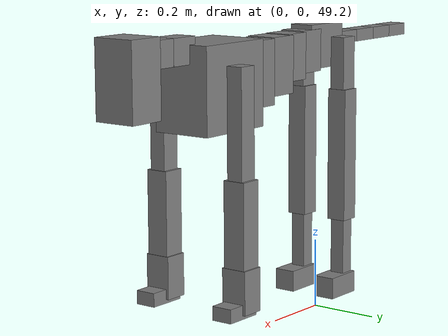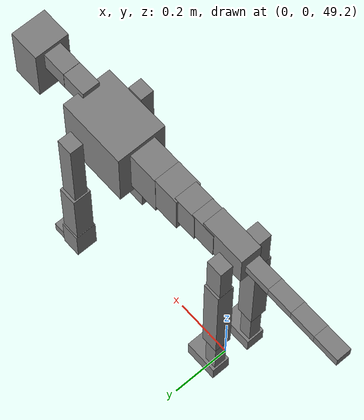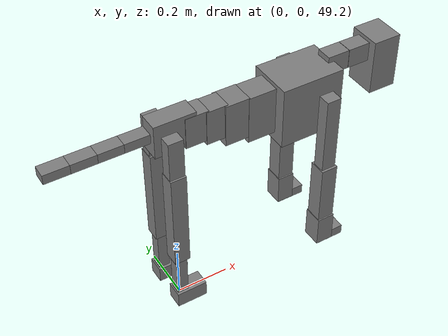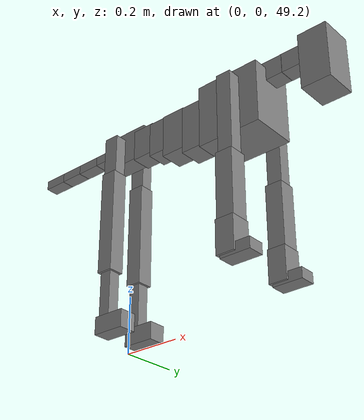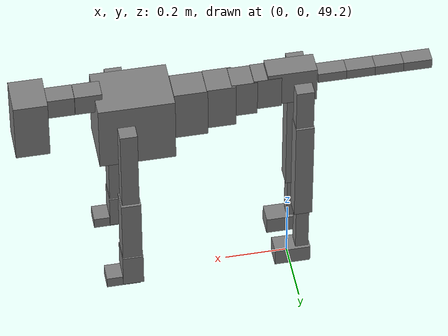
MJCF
<mujoco model="dog">

    <default>
        <joint armature="0.02" stiffness="1" damping="0.2" limited="true"/>
        <geom condim="3" friction="1 0.05 0.05" margin="0.01"/>
        <motor ctrllimited="true" ctrlrange="-1.0 1.0" forcelimited="true" gear="50"/>
    </default>

    <compiler inertiafromgeom="true" angle="radian"/>

    <option timestep="0.016" iterations="50" tolerance="1e-10" solver="Newton" jacobian="dense" cone="pyramidal"/>

    <size nconmax="20000" njmax="60000" nstack="5000000"/>
    <visual>
        <map force="0.1" zfar="30"/>
        <rgba haze="0.15 0.25 0.35 1"/>
        <quality shadowsize="2048"/>
        <global offwidth="800" offheight="800"/>
    </visual>

    <asset>
        <texture type="skybox" builtin="gradient" rgb1="0.3 0.5 0.7" rgb2="0 0 0" width="512" height="512"/>
        <texture name="texplane" type="2d" builtin="checker" rgb1=".2 .3 .4" rgb2=".1 0.15 0.2" width="512" height="512"
                 mark="cross" markrgb=".8 .8 .8"/>
        <texture name="texgeom" type="cube" builtin="flat" mark="cross" width="127" height="1278" rgb1="0.8 0.6 0.4"
                 rgb2="0.8 0.6 0.4" markrgb="1 1 1" random="0.01"/>

        <material name="matplane" reflectance="0.3" texture="texplane" texrepeat="1 1" texuniform="true"/>
        <material name="matgeom" texture="texgeom" texuniform="true" rgba="0.8 0.6 .4 1"/>
    </asset>

    <worldbody>
        <geom name="floor" pos="0 0 0" size="0 0 .25" type="plane" material="matplane" condim="3"/>

        <light directional="false" diffuse=".2 .2 .2" specular="0 0 0" pos="0 0 5" dir="0 0 -1" castshadow="false"/>
        <light mode="targetbodycom" target="torso" directional="false" diffuse=".8 .8 .8" specular="0.3 0.3 0.3"
               pos="0 0 4.0" dir="0 0 -1"/>

        <body name="root" pos="0 0 50">
            <freejoint name="root_1"/>
            <geom type="box" pos="0 0 -0.02" size="0.0774  0.0358  0.063" density="2030"/>

            <body name="spine1" pos="0.054 0 0">
                <joint name="spine1_y" axis="0 1 0" range="0 0.7" limited="true"/>
                <geom type="box" pos="0.02375 0 -0.03" size="0.04375  0.0375  0.05985" density="2030"/>

                <body name="spine2" pos="0.0612 0 0">
                    <joint name="spine2_y" axis="0 1 0" range="-0.15 0.15" limited="true"/>
                    <geom type="box" pos="0.03555  0  -0.04" size="0.04055  0.039  0.06615" density="2030"/>

                    <body name="spine3" pos="0.0730 0 0">
                        <joint name="spine3_y" axis="0 1 0" range="-0.15 0.15" limited="true"/>
                        <geom type="box" pos="0.03555  0  -0.057" size="0.04555  0.0445  0.081" density="2030"/>

                        <body name="spine4" pos="0.0780 0 0">
                            <joint name="spine4_y" axis="0 1 0" range="-0.15 0.15" limited="true"/>
                            <geom type="box" pos="0.05265  0  -0.07" size="0.05265  0.045  0.09135" density="2030"/>

                            <body name="torso" pos="0.1082 0 0">
                                <joint name="torso_y" axis="0 1 0" range="-0.15 0.15" limited="true"/>
                                <geom type="box" pos="0.11925  0  -0.085" size="0.11925  0.085  0.11745"
                                      density="2030"/>

                                <body name="neck1" pos="0.2160  0   0.0180">
                                    <joint name="neck1_y" axis="0 1 0" range="-1.2  -1" limited="true"/>
                                    <geom type="box" pos="0.0423  0  0" size="0.0423  0.03  0.036" density="2325"/>

                                    <body name="neck2" pos="0.0853  0  0">
                                        <joint name="neck2_y" axis="0 1 0" range="0.1  0" limited="true"/>
                                        <geom type="box" pos="0.0423  0  0" size="0.0423  0.03  0.036" density="2325"/>

                                        <body name="head" pos="0.0853  0  0">
                                            <joint name="head_y" axis="0 1 0" range="-0.3  -0.2" limited="true"/>
                                            <geom type="box" pos="0.0531  0  -0.055" size="0.0531  0.06  0.1044"
                                                  density="4030"/>

                                        </body>
                                    </body>
                                </body>

                                <body name="front_shoulder" pos="0.156  0   -0.0480">
                                    <joint name="front_shoulder_y" axis="0 1 0" range="-1 1.5" limited="true"/>
                                    <geom type="box" pos="0 0.13 -0.1352" size="0.0272  0.0232  0.1619" density="1158"/>
                                    <geom type="box" pos="0 -0.13 -0.1352" size="0.0272  0.0232  0.1619"
                                          density="1158"/>

                                    <body name="front_elbow" pos="0  0  -0.2705">
                                        <joint name="front_elbow_y" axis="0 1 0" range="-2 0" limited="true"/>
                                        <geom type="box" pos="0 0.13 -0.1231" size="0.0314  0.0321  0.1231"
                                              density="1081"/>
                                        <geom type="box" pos="0 -0.13 -0.1231" size="0.0314  0.0321  0.1231"
                                              density="1081"/>

                                        <body name="front_wrist" pos="0  0  -0.2463">
                                            <joint name="front_wrist_y" axis="0 1 0" range="-0.2 0" limited="true"/>
                                            <geom type="box" pos="0 0.13 -0.0461" size="0.0332  0.0369  0.0593"
                                                  density="1664"/>
                                            <geom type="box" pos="0 -0.13 -0.0461" size="0.0332  0.0369  0.0593"
                                                  density="1664"/>

                                            <body name="front_finger_end" pos="0  0  -0.0923">
                                                <joint name="front_finger_y" axis="0 1 0" range="-0.4 1"
                                                       limited="true"/>
                                                <geom type="box" pos="0.0298  0.13  -0.0041"
                                                      size="0.0546  0.0298  0.0191" density="1515"/>
                                                <geom type="box" pos="0.0298  -0.13  -0.0041"
                                                      size="0.0546  0.0298  0.0191" density="1515"/>

                                            </body>

                                        </body>
                                    </body>
                                </body>

                            </body>
                        </body>
                    </body>
                </body>
            </body>

            <body name="back_hip" pos="-0.03 0 -0.018">
                <joint name="back_hip_y" axis="0 1 0" range="-1.5 0.3" limited="true"/>
                <geom type="box" pos="0 0.07 -0.0715" size="0.0279  0.0219  0.0943" density="1154"/>
                <geom type="box" pos="0 -0.07 -0.0715" size="0.0279  0.0219  0.0943" density="1154"/>

                <body name="back_knee" pos="0  0  -0.1431">
                    <joint name="back_knee_y" axis="0 1 0" range="0 2.8" limited="true"/>
                    <geom type="box" pos="0 0.07 -0.1761" size="0.0291  0.0287  0.1917" density="1227"/>
                    <geom type="box" pos="0 -0.07 -0.1761" size="0.0291  0.0287  0.1917" density="1227"/>

                    <body name="back_ankle" pos="0  0  -0.3523">
                        <joint name="back_ankle_y" axis="0 1 0" range="-2.2 0" limited="true"/>
                        <geom type="box" pos="0 0.07 -0.0954" size="0.0211  0.0211  0.1066" density="1284"/>
                        <geom type="box" pos="0 -0.07 -0.0954" size="0.0211  0.0211  0.1066" density="1284"/>

                        <body name="back_toe_end" pos="0  0  -0.1907">
                            <joint name="back_toe_y" axis="0 1 0" range="-0.4 1" limited="true"/>
                            <geom type="box" pos="0.0314  0.07  -0.0156" size="0.0576  0.0314  0.0306" density="1515"/>
                            <geom type="box" pos="0.0314  -0.07  -0.0156" size="0.0576  0.0314  0.0306" density="1515"/>

                        </body>
                    </body>
                </body>
            </body>

            <body name="tail1" pos="-0.074 0 -0.006">
                <joint name="tail1_y" axis="0 1 0" range="-0.2 0.2" limited="true"/>
                <geom type="box" pos="-0.0536  0  0" size="0.045  0.025  0.0175" density="1587"/>

                <body name="tail2" pos="-0.09 0 0">
                    <joint name="tail2_y" axis="0 1 0" range="-0.2 0.2" limited="true"/>
                    <geom type="box" pos="-0.0536  0  0" size="0.045  0.025  0.0175" density="1587"/>

                    <body name="tail3" pos="-0.09 0 0">
                        <joint name="tail3_y" axis="0 1 0" range="-0.2 0.2" limited="true"/>
                        <geom type="box" pos="-0.0536  0  0" size="0.045  0.025  0.0175" density="1587"/>

                        <body name="tail4" pos="-0.09 0 0">
                            <joint name="tail4_y" axis="0 1 0" range="-0.2 0.2" limited="true"/>
                            <geom type="box" pos="-0.0536  0  0" size="0.045  0.025  0.0175" density="1587"/>

                        </body>
                    </body>
                </body>
            </body>
        </body>
    </worldbody>

    <actuator>
        <motor joint="spine1_y" forcerange="-150 150     "/>
        <motor joint="spine2_y" forcerange="-150 150     "/>
        <motor joint="spine3_y" forcerange="-150 150     "/>
        <motor joint="spine4_y" forcerange="-150 150     "/>
        <motor joint="torso_y" forcerange="-150 150     "/>
        <motor joint="neck1_y" forcerange="-100 100       "/>
        <motor joint="neck2_y" forcerange="-100 100       "/>
        <motor joint="head_y" forcerange="-150 150       "/>
        <motor joint="front_shoulder_y" forcerange="-149.11 105.81"/>
        <motor joint="front_elbow_y" forcerange="-141.57 192.23"/>
        <motor joint="front_wrist_y" forcerange="-147.00 148.01"/>
        <motor joint="front_finger_y" forcerange="-91.44 27.26"/>
        <motor joint="back_hip_y" forcerange="-215.18 276.35"/>
        <motor joint="back_knee_y" forcerange="-298.39 319.27"/>
        <motor joint="back_angle_y" forcerange="-126.72 110.28"/>
        <motor joint="back_toe_y" forcerange="-101.52 69.94"/>
        <motor joint="tail1_y" forcerange="-50 50     "/>
        <motor joint="tail2_y" forcerange="-50 50     "/>
        <motor joint="tail3_y" forcerange="-50 50     "/>
        <motor joint="tail4_y" forcerange="-50 50     "/>
    </actuator>
</mujoco>
